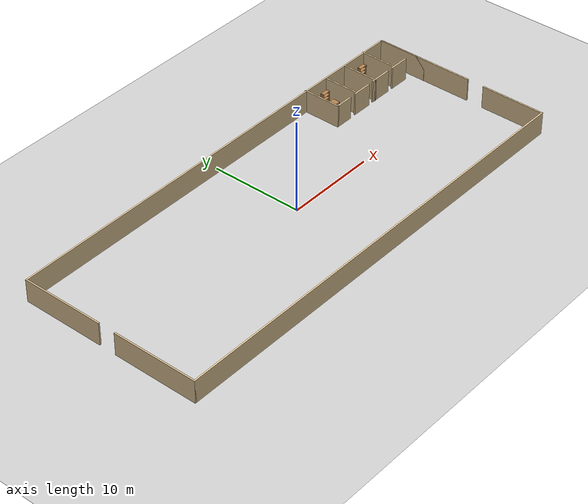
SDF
<sdf version="1.6">
 <world name="default">
  <light name="sun" type="directional">
   <pose>0 0 10 0 -0 0</pose>
   <diffuse>0.8 0.8 0.8 1</diffuse>
   <specular>0.1 0.1 0.1 1</specular>
   <attenuation>
    <range>1000</range>
    <constant>0.9</constant>
    <linear>0.01</linear>
    <quadratic>0.001</quadratic>
   </attenuation>
   <direction>-0.5 0.5 -1</direction>
  </light>
  <model name="ground_plane">
   <static>1</static>
   <link name="link">
    <collision name="collision">
     <geometry><plane><normal>0 0 1</normal><size>100 100</size></plane></geometry>
     <surface><friction><ode><mu>100</mu><mu2>50</mu2></ode></friction></surface>
    </collision>
    <visual name="visual">
     <cast_shadows>0</cast_shadows>
     <geometry><plane><normal>0 0 1</normal><size>100 100</size></plane></geometry>
     <material>
      <script><uri>file://media/materials/scripts/gazebo.material</uri><name>Gazebo/Grey</name></script>
     </material>
    </visual>
   </link>
  </model>
  <gravity>0 0 -9.8</gravity>
  <magnetic_field>6e-06 2.3e-05 -4.2e-05</magnetic_field>
  <atmosphere type="adiabatic"/>
  <physics name="default_physics" default="0" type="ode">
   <max_step_size>0.001</max_step_size>
   <real_time_factor>1</real_time_factor>
   <real_time_update_rate>1000</real_time_update_rate>
  </physics>
  <scene><ambient>0.4 0.4 0.4 1</ambient><background>0.7 0.7 0.7 1</background><shadows>1</shadows></scene>
  <spherical_coordinates>
   <surface_model>EARTH_WGS84</surface_model>
   <latitude_deg>0</latitude_deg>
   <longitude_deg>0</longitude_deg>
   <elevation>0</elevation>
   <heading_deg>0</heading_deg>
  </spherical_coordinates>
  <model name="warehouse.world">
   <pose>-0.1899 -0.31102 0 0 -0 0</pose>
   <link name="Wall_11">
    <collision name="Wall_11_Collision">
     <geometry><box><size>8.95437 0.15 2.5</size></box></geometry>
     <pose>0 0 1.25 0 -0 0</pose>
    </collision>
    <visual name="Wall_11_Visual">
     <pose>0 0 1.25 0 -0 0</pose>
     <geometry><box><size>8.95437 0.15 2.5</size></box></geometry>
     <material>
      <script><uri>file://media/materials/scripts/gazebo.material</uri><name>Gazebo/Grey</name></script>
      <ambient>0.921569 0.807843 0.615686 1</ambient>
     </material>
    </visual>
    <pose>-24.9174 5.50766 0 0 0 -1.5708</pose>
   </link>
   <link name="Wall_15">
    <collision name="Wall_15_Collision">
     <geometry><box><size>4.25 0.15 2.5</size></box></geometry>
     <pose>0 0 1.25 0 -0 0</pose>
    </collision>
    <visual name="Wall_15_Visual">
     <pose>0 0 1.25 0 -0 0</pose>
     <geometry><box><size>4.25 0.15 2.5</size></box></geometry>
     <material>
      <script><uri>file://media/materials/scripts/gazebo.material</uri><name>Gazebo/Grey</name></script>
      <ambient>0.921569 0.807843 0.615686 1</ambient>
     </material>
    </visual>
    <pose>13.0128 7.93957 0 0 0 -1.5708</pose>
   </link>
   <link name="Wall_16">
    <collision name="Wall_16_Collision">
     <geometry><box><size>2 0.15 2.5</size></box></geometry>
     <pose>0 0 1.25 0 -0 0</pose>
    </collision>
    <visual name="Wall_16_Visual">
     <pose>0 0 1.25 0 -0 0</pose>
     <geometry><box><size>2 0.15 2.5</size></box></geometry>
     <material>
      <script><uri>file://media/materials/scripts/gazebo.material</uri><name>Gazebo/Grey</name></script>
      <ambient>0.921569 0.807843 0.615686 1</ambient>
     </material>
    </visual>
    <pose>13.9378 5.88957 0 0 -0 0</pose>
   </link>
   <link name="Wall_18">
    <collision name="Wall_18_Collision">
     <geometry><box><size>4 0.15 2.5</size></box></geometry>
     <pose>0 0 1.25 0 -0 0</pose>
    </collision>
    <visual name="Wall_18_Visual">
     <pose>0 0 1.25 0 -0 0</pose>
     <geometry><box><size>4 0.15 2.5</size></box></geometry>
     <material>
      <script><uri>file://media/materials/scripts/gazebo.material</uri><name>Gazebo/Grey</name></script>
      <ambient>0.921569 0.807843 0.615686 1</ambient>
     </material>
    </visual>
    <pose>21.9895 8.0272 0 0 0 -1.5708</pose>
   </link>
   <link name="Wall_20">
    <collision name="Wall_20_Collision">
     <geometry><box><size>2.25 0.15 2.5</size></box></geometry>
     <pose>0 0 1.25 0 -0 0</pose>
    </collision>
    <visual name="Wall_20_Visual">
     <pose>0 0 1.25 0 -0 0</pose>
     <geometry><box><size>2.25 0.15 2.5</size></box></geometry>
     <material>
      <script><uri>file://media/materials/scripts/gazebo.material</uri><name>Gazebo/Grey</name></script>
      <ambient>0.921569 0.807843 0.615686 1</ambient>
     </material>
    </visual>
    <pose>22.7668 5.9506 0 0 -0 3.14159</pose>
   </link>
   <link name="Wall_22">
    <collision name="Wall_22_Collision">
     <geometry><box><size>2.5 0.15 2.5</size></box></geometry>
     <pose>0 0 1.25 0 -0 0</pose>
    </collision>
    <visual name="Wall_22_Visual">
     <pose>0 0 1.25 0 -0 0</pose>
     <geometry><box><size>2.5 0.15 2.5</size></box></geometry>
     <material>
      <script><uri>file://media/materials/scripts/gazebo.material</uri><name>Gazebo/Grey</name></script>
      <ambient>0.921569 0.807843 0.615686 1</ambient>
     </material>
    </visual>
    <pose>19.7533 5.95577 0 0 -0 3.14159</pose>
   </link>
   <link name="Wall_24">
    <collision name="Wall_24_Collision">
     <geometry><box><size>4 0.15 2.5</size></box></geometry>
     <pose>0 0 1.25 0 -0 0</pose>
    </collision>
    <visual name="Wall_24_Visual">
     <pose>0 0 1.25 0 -0 0</pose>
     <geometry><box><size>4 0.15 2.5</size></box></geometry>
     <material>
      <script><uri>file://media/materials/scripts/gazebo.material</uri><name>Gazebo/Grey</name></script>
      <ambient>0.921569 0.807843 0.615686 1</ambient>
     </material>
    </visual>
    <pose>18.9144 7.84422 0 0 -0 1.5708</pose>
   </link>
   <link name="Wall_26">
    <collision name="Wall_26_Collision">
     <geometry><box><size>3.75 0.15 2.5</size></box></geometry>
     <pose>0 0 1.25 0 -0 0</pose>
    </collision>
    <visual name="Wall_26_Visual">
     <pose>0 0 1.25 0 -0 0</pose>
     <geometry><box><size>3.75 0.15 2.5</size></box></geometry>
     <material>
      <script><uri>file://media/materials/scripts/gazebo.material</uri><name>Gazebo/Grey</name></script>
      <ambient>0.921569 0.807843 0.615686 1</ambient>
     </material>
    </visual>
    <pose>15.9835 7.91123 0 0 0 -1.5708</pose>
   </link>
   <link name="Wall_28">
    <collision name="Wall_28_Collision">
     <geometry><box><size>2.25 0.15 2.5</size></box></geometry>
     <pose>0 0 1.25 0 -0 0</pose>
    </collision>
    <visual name="Wall_28_Visual">
     <pose>0 0 1.25 0 -0 0</pose>
     <geometry><box><size>2.25 0.15 2.5</size></box></geometry>
     <material>
      <script><uri>file://media/materials/scripts/gazebo.material</uri><name>Gazebo/Grey</name></script>
      <ambient>0.921569 0.807843 0.615686 1</ambient>
     </material>
    </visual>
    <pose>16.7839 5.91781 0 0 -0 3.14159</pose>
   </link>
   <link name="Wall_30">
    <collision name="Wall_30_Collision">
     <geometry><box><size>11 0.15 2.5</size></box></geometry>
     <pose>0 0 1.25 0 -0 0</pose>
    </collision>
    <visual name="Wall_30_Visual">
     <pose>0 0 1.25 0 -0 0</pose>
     <geometry><box><size>11 0.15 2.5</size></box></geometry>
     <material>
      <script><uri>file://media/materials/scripts/gazebo.material</uri><name>Gazebo/Grey</name></script>
      <ambient>0.921569 0.807843 0.615686 1</ambient>
     </material>
    </visual>
    <pose>24.9374 4.40432 0 0 -0 1.5708</pose>
   </link>
   <link name="Wall_31">
    <collision name="Wall_31_Collision">
     <geometry><box><size>11 0.15 2.5</size></box></geometry>
     <pose>0 0 1.25 0 -0 0</pose>
    </collision>
    <visual name="Wall_31_Visual">
     <pose>0 0 1.25 0 -0 0</pose>
     <geometry><box><size>11 0.15 2.5</size></box></geometry>
     <material>
      <script><uri>file://media/materials/scripts/gazebo.material</uri><name>Gazebo/Grey</name></script>
      <ambient>0.921569 0.807843 0.615686 1</ambient>
     </material>
    </visual>
    <pose>24.9374 4.40432 0 0 0 -1.5708</pose>
   </link>
   <link name="Wall_33">
    <collision name="Wall_33_Collision">
     <geometry><box><size>7 0.15 2.5</size></box></geometry>
     <pose>0 0 1.25 0 -0 0</pose>
    </collision>
    <visual name="Wall_33_Visual">
     <pose>0 0 1.25 0 -0 0</pose>
     <geometry><box><size>7 0.15 2.5</size></box></geometry>
     <material>
      <script><uri>file://media/materials/scripts/gazebo.material</uri><name>Gazebo/Grey</name></script>
      <ambient>0.921569 0.807843 0.615686 1</ambient>
     </material>
    </visual>
    <pose>24.91 -6.46974 0 0 0 -1.5708</pose>
   </link>
   <link name="Wall_35">
    <collision name="Wall_35_Collision">
     <geometry><box><size>50 0.15 2.5</size></box></geometry>
     <pose>0 0 1.25 0 -0 0</pose>
    </collision>
    <visual name="Wall_35_Visual">
     <pose>0 0 1.25 0 -0 0</pose>
     <geometry><box><size>50 0.15 2.5</size></box></geometry>
     <material>
      <script><uri>file://media/materials/scripts/gazebo.material</uri><name>Gazebo/Grey</name></script>
      <ambient>0.921569 0.807843 0.615686 1</ambient>
     </material>
    </visual>
    <pose>-0.012409 -9.98957 0 0 -0 0</pose>
   </link>
   <link name="Wall_4">
    <collision name="Wall_4_Collision">
     <geometry><box><size>49.75 0.15 2.5</size></box></geometry>
     <pose>0 0 1.25 0 -0 0</pose>
    </collision>
    <visual name="Wall_4_Visual">
     <pose>0 0 1.25 0 -0 0</pose>
     <geometry><box><size>49.75 0.15 2.5</size></box></geometry>
     <material>
      <script><uri>file://media/materials/scripts/gazebo.material</uri><name>Gazebo/Grey</name></script>
      <ambient>0.921569 0.807843 0.615686 1</ambient>
     </material>
    </visual>
    <pose>-0.117354 9.89464 0 0 -0 3.14159</pose>
   </link>
   <link name="Wall_9">
    <collision name="Wall_9_Collision">
     <geometry><box><size>9.25 0.15 2.5</size></box></geometry>
     <pose>0 0 1.25 0 -0 0</pose>
    </collision>
    <visual name="Wall_9_Visual">
     <pose>0 0 1.25 0 -0 0</pose>
     <geometry><box><size>9.25 0.15 2.5</size></box></geometry>
     <material>
      <script><uri>file://media/materials/scripts/gazebo.material</uri><name>Gazebo/Grey</name></script>
      <ambient>0.921569 0.807843 0.615686 1</ambient>
     </material>
    </visual>
    <pose>-24.9374 -5.43957 0 0 0 -1.5708</pose>
   </link>
   <static>1</static>
  </model>
  <model name="bookshelf">
   <static>1</static>
   <link name="link">
    <inertial><mass>1</mass></inertial>
    <collision name="back">
     <pose>0 0.005 0.6 0 -0 0</pose>
     <geometry><box><size>0.9 0.01 1.2</size></box></geometry>
    </collision>
    <visual name="visual1">
     <pose>0 0.005 0.6 0 -0 0</pose>
     <geometry><box><size>0.9 0.01 1.2</size></box></geometry>
     <material>
      <script><uri>file://media/materials/scripts/gazebo.material</uri><name>Gazebo/Wood</name></script>
     </material>
    </visual>
    <collision name="left_side">
     <pose>0.45 -0.195 0.6 0 -0 0</pose>
     <geometry><box><size>0.02 0.4 1.2</size></box></geometry>
    </collision>
    <visual name="visual2">
     <pose>0.45 -0.195 0.6 0 -0 0</pose>
     <geometry><box><size>0.02 0.4 1.2</size></box></geometry>
     <material>
      <script><uri>file://media/materials/scripts/gazebo.material</uri><name>Gazebo/Wood</name></script>
     </material>
    </visual>
    <collision name="right_side">
     <pose>-0.45 -0.195 0.6 0 -0 0</pose>
     <geometry><box><size>0.02 0.4 1.2</size></box></geometry>
    </collision>
    <visual name="visual3">
     <pose>-0.45 -0.195 0.6 0 -0 0</pose>
     <geometry><box><size>0.02 0.4 1.2</size></box></geometry>
     <material>
      <script><uri>file://media/materials/scripts/gazebo.material</uri><name>Gazebo/Wood</name></script>
     </material>
    </visual>
    <collision name="bottom">
     <pose>0 -0.195 0.03 0 -0 0</pose>
     <geometry><box><size>0.88 0.4 0.06</size></box></geometry>
    </collision>
    <visual name="visual4">
     <pose>0 -0.195 0.03 0 -0 0</pose>
     <geometry><box><size>0.88 0.4 0.06</size></box></geometry>
     <material>
      <script><uri>file://media/materials/scripts/gazebo.material</uri><name>Gazebo/Wood</name></script>
     </material>
    </visual>
    <collision name="top">
     <pose>0 -0.195 1.19 0 -0 0</pose>
     <geometry><box><size>0.88 0.4 0.02</size></box></geometry>
    </collision>
    <visual name="visual5">
     <pose>0 -0.195 1.19 0 -0 0</pose>
     <geometry><box><size>0.88 0.4 0.02</size></box></geometry>
     <material>
      <script><uri>file://media/materials/scripts/gazebo.material</uri><name>Gazebo/Wood</name></script>
     </material>
    </visual>
    <collision name="low_shelf">
     <pose>0 -0.195 0.43 0 -0 0</pose>
     <geometry><box><size>0.88 0.4 0.02</size></box></geometry>
    </collision>
    <visual name="visual6">
     <pose>0 -0.195 0.43 0 -0 0</pose>
     <geometry><box><size>0.88 0.4 0.02</size></box></geometry>
     <material>
      <script><uri>file://media/materials/scripts/gazebo.material</uri><name>Gazebo/Wood</name></script>
     </material>
    </visual>
    <collision name="high_shelf">
     <pose>0 -0.195 0.8 0 -0 0</pose>
     <geometry><box><size>0.88 0.4 0.02</size></box></geometry>
    </collision>
    <visual name="visual7">
     <pose>0 -0.195 0.8 0 -0 0</pose>
     <geometry><box><size>0.88 0.4 0.02</size></box></geometry>
     <material>
      <script><uri>file://media/materials/scripts/gazebo.material</uri><name>Gazebo/Wood</name></script>
     </material>
    </visual>
   </link>
   <pose>15.2638 9.38561 0 0 -0 0</pose>
  </model>
  <model name="bookshelf_0">
   <static>1</static>
   <link name="link">
    <inertial><mass>1</mass></inertial>
    <collision name="back">
     <pose>0 0.005 0.6 0 -0 0</pose>
     <geometry><box><size>0.9 0.01 1.2</size></box></geometry>
    </collision>
    <visual name="visual1">
     <pose>0 0.005 0.6 0 -0 0</pose>
     <geometry><box><size>0.9 0.01 1.2</size></box></geometry>
     <material>
      <script><uri>file://media/materials/scripts/gazebo.material</uri><name>Gazebo/Wood</name></script>
     </material>
    </visual>
    <collision name="left_side">
     <pose>0.45 -0.195 0.6 0 -0 0</pose>
     <geometry><box><size>0.02 0.4 1.2</size></box></geometry>
    </collision>
    <visual name="visual2">
     <pose>0.45 -0.195 0.6 0 -0 0</pose>
     <geometry><box><size>0.02 0.4 1.2</size></box></geometry>
     <material>
      <script><uri>file://media/materials/scripts/gazebo.material</uri><name>Gazebo/Wood</name></script>
     </material>
    </visual>
    <collision name="right_side">
     <pose>-0.45 -0.195 0.6 0 -0 0</pose>
     <geometry><box><size>0.02 0.4 1.2</size></box></geometry>
    </collision>
    <visual name="visual3">
     <pose>-0.45 -0.195 0.6 0 -0 0</pose>
     <geometry><box><size>0.02 0.4 1.2</size></box></geometry>
     <material>
      <script><uri>file://media/materials/scripts/gazebo.material</uri><name>Gazebo/Wood</name></script>
     </material>
    </visual>
    <collision name="bottom">
     <pose>0 -0.195 0.03 0 -0 0</pose>
     <geometry><box><size>0.88 0.4 0.06</size></box></geometry>
    </collision>
    <visual name="visual4">
     <pose>0 -0.195 0.03 0 -0 0</pose>
     <geometry><box><size>0.88 0.4 0.06</size></box></geometry>
     <material>
      <script><uri>file://media/materials/scripts/gazebo.material</uri><name>Gazebo/Wood</name></script>
     </material>
    </visual>
    <collision name="top">
     <pose>0 -0.195 1.19 0 -0 0</pose>
     <geometry><box><size>0.88 0.4 0.02</size></box></geometry>
    </collision>
    <visual name="visual5">
     <pose>0 -0.195 1.19 0 -0 0</pose>
     <geometry><box><size>0.88 0.4 0.02</size></box></geometry>
     <material>
      <script><uri>file://media/materials/scripts/gazebo.material</uri><name>Gazebo/Wood</name></script>
     </material>
    </visual>
    <collision name="low_shelf">
     <pose>0 -0.195 0.43 0 -0 0</pose>
     <geometry><box><size>0.88 0.4 0.02</size></box></geometry>
    </collision>
    <visual name="visual6">
     <pose>0 -0.195 0.43 0 -0 0</pose>
     <geometry><box><size>0.88 0.4 0.02</size></box></geometry>
     <material>
      <script><uri>file://media/materials/scripts/gazebo.material</uri><name>Gazebo/Wood</name></script>
     </material>
    </visual>
    <collision name="high_shelf">
     <pose>0 -0.195 0.8 0 -0 0</pose>
     <geometry><box><size>0.88 0.4 0.02</size></box></geometry>
    </collision>
    <visual name="visual7">
     <pose>0 -0.195 0.8 0 -0 0</pose>
     <geometry><box><size>0.88 0.4 0.02</size></box></geometry>
     <material>
      <script><uri>file://media/materials/scripts/gazebo.material</uri><name>Gazebo/Wood</name></script>
     </material>
    </visual>
   </link>
   <pose>16.3534 9.29994 0 0 -0 0</pose>
  </model>
  <model name="bookshelf_1">
   <static>1</static>
   <link name="link">
    <inertial><mass>1</mass></inertial>
    <collision name="back">
     <pose>0 0.005 0.6 0 -0 0</pose>
     <geometry><box><size>0.9 0.01 1.2</size></box></geometry>
    </collision>
    <visual name="visual1">
     <pose>0 0.005 0.6 0 -0 0</pose>
     <geometry><box><size>0.9 0.01 1.2</size></box></geometry>
     <material>
      <script><uri>file://media/materials/scripts/gazebo.material</uri><name>Gazebo/Wood</name></script>
     </material>
    </visual>
    <collision name="left_side">
     <pose>0.45 -0.195 0.6 0 -0 0</pose>
     <geometry><box><size>0.02 0.4 1.2</size></box></geometry>
    </collision>
    <visual name="visual2">
     <pose>0.45 -0.195 0.6 0 -0 0</pose>
     <geometry><box><size>0.02 0.4 1.2</size></box></geometry>
     <material>
      <script><uri>file://media/materials/scripts/gazebo.material</uri><name>Gazebo/Wood</name></script>
     </material>
    </visual>
    <collision name="right_side">
     <pose>-0.45 -0.195 0.6 0 -0 0</pose>
     <geometry><box><size>0.02 0.4 1.2</size></box></geometry>
    </collision>
    <visual name="visual3">
     <pose>-0.45 -0.195 0.6 0 -0 0</pose>
     <geometry><box><size>0.02 0.4 1.2</size></box></geometry>
     <material>
      <script><uri>file://media/materials/scripts/gazebo.material</uri><name>Gazebo/Wood</name></script>
     </material>
    </visual>
    <collision name="bottom">
     <pose>0 -0.195 0.03 0 -0 0</pose>
     <geometry><box><size>0.88 0.4 0.06</size></box></geometry>
    </collision>
    <visual name="visual4">
     <pose>0 -0.195 0.03 0 -0 0</pose>
     <geometry><box><size>0.88 0.4 0.06</size></box></geometry>
     <material>
      <script><uri>file://media/materials/scripts/gazebo.material</uri><name>Gazebo/Wood</name></script>
     </material>
    </visual>
    <collision name="top">
     <pose>0 -0.195 1.19 0 -0 0</pose>
     <geometry><box><size>0.88 0.4 0.02</size></box></geometry>
    </collision>
    <visual name="visual5">
     <pose>0 -0.195 1.19 0 -0 0</pose>
     <geometry><box><size>0.88 0.4 0.02</size></box></geometry>
     <material>
      <script><uri>file://media/materials/scripts/gazebo.material</uri><name>Gazebo/Wood</name></script>
     </material>
    </visual>
    <collision name="low_shelf">
     <pose>0 -0.195 0.43 0 -0 0</pose>
     <geometry><box><size>0.88 0.4 0.02</size></box></geometry>
    </collision>
    <visual name="visual6">
     <pose>0 -0.195 0.43 0 -0 0</pose>
     <geometry><box><size>0.88 0.4 0.02</size></box></geometry>
     <material>
      <script><uri>file://media/materials/scripts/gazebo.material</uri><name>Gazebo/Wood</name></script>
     </material>
    </visual>
    <collision name="high_shelf">
     <pose>0 -0.195 0.8 0 -0 0</pose>
     <geometry><box><size>0.88 0.4 0.02</size></box></geometry>
    </collision>
    <visual name="visual7">
     <pose>0 -0.195 0.8 0 -0 0</pose>
     <geometry><box><size>0.88 0.4 0.02</size></box></geometry>
     <material>
      <script><uri>file://media/materials/scripts/gazebo.material</uri><name>Gazebo/Wood</name></script>
     </material>
    </visual>
   </link>
   <pose>21.2515 9.49726 0 0 -0 0</pose>
  </model>
  <model name="bookshelf_2">
   <static>1</static>
   <link name="link">
    <inertial><mass>1</mass></inertial>
    <collision name="back">
     <pose>0 0.005 0.6 0 -0 0</pose>
     <geometry><box><size>0.9 0.01 1.2</size></box></geometry>
    </collision>
    <visual name="visual1">
     <pose>0 0.005 0.6 0 -0 0</pose>
     <geometry><box><size>0.9 0.01 1.2</size></box></geometry>
     <material>
      <script><uri>file://media/materials/scripts/gazebo.material</uri><name>Gazebo/Wood</name></script>
     </material>
    </visual>
    <collision name="left_side">
     <pose>0.45 -0.195 0.6 0 -0 0</pose>
     <geometry><box><size>0.02 0.4 1.2</size></box></geometry>
    </collision>
    <visual name="visual2">
     <pose>0.45 -0.195 0.6 0 -0 0</pose>
     <geometry><box><size>0.02 0.4 1.2</size></box></geometry>
     <material>
      <script><uri>file://media/materials/scripts/gazebo.material</uri><name>Gazebo/Wood</name></script>
     </material>
    </visual>
    <collision name="right_side">
     <pose>-0.45 -0.195 0.6 0 -0 0</pose>
     <geometry><box><size>0.02 0.4 1.2</size></box></geometry>
    </collision>
    <visual name="visual3">
     <pose>-0.45 -0.195 0.6 0 -0 0</pose>
     <geometry><box><size>0.02 0.4 1.2</size></box></geometry>
     <material>
      <script><uri>file://media/materials/scripts/gazebo.material</uri><name>Gazebo/Wood</name></script>
     </material>
    </visual>
    <collision name="bottom">
     <pose>0 -0.195 0.03 0 -0 0</pose>
     <geometry><box><size>0.88 0.4 0.06</size></box></geometry>
    </collision>
    <visual name="visual4">
     <pose>0 -0.195 0.03 0 -0 0</pose>
     <geometry><box><size>0.88 0.4 0.06</size></box></geometry>
     <material>
      <script><uri>file://media/materials/scripts/gazebo.material</uri><name>Gazebo/Wood</name></script>
     </material>
    </visual>
    <collision name="top">
     <pose>0 -0.195 1.19 0 -0 0</pose>
     <geometry><box><size>0.88 0.4 0.02</size></box></geometry>
    </collision>
    <visual name="visual5">
     <pose>0 -0.195 1.19 0 -0 0</pose>
     <geometry><box><size>0.88 0.4 0.02</size></box></geometry>
     <material>
      <script><uri>file://media/materials/scripts/gazebo.material</uri><name>Gazebo/Wood</name></script>
     </material>
    </visual>
    <collision name="low_shelf">
     <pose>0 -0.195 0.43 0 -0 0</pose>
     <geometry><box><size>0.88 0.4 0.02</size></box></geometry>
    </collision>
    <visual name="visual6">
     <pose>0 -0.195 0.43 0 -0 0</pose>
     <geometry><box><size>0.88 0.4 0.02</size></box></geometry>
     <material>
      <script><uri>file://media/materials/scripts/gazebo.material</uri><name>Gazebo/Wood</name></script>
     </material>
    </visual>
    <collision name="high_shelf">
     <pose>0 -0.195 0.8 0 -0 0</pose>
     <geometry><box><size>0.88 0.4 0.02</size></box></geometry>
    </collision>
    <visual name="visual7">
     <pose>0 -0.195 0.8 0 -0 0</pose>
     <geometry><box><size>0.88 0.4 0.02</size></box></geometry>
     <material>
      <script><uri>file://media/materials/scripts/gazebo.material</uri><name>Gazebo/Wood</name></script>
     </material>
    </visual>
   </link>
   <pose>22.4079 9.44982 0 0 -0 0</pose>
  </model>
  <model name="table">
   <static>0</static>
   <link name="link">
    <collision name="surface">
     <pose>0 0 1 0 -0 0</pose>
     <geometry><box><size>1.5 0.8 0.03</size></box></geometry>
     <surface><friction><ode><mu>0.6</mu><mu2>0.6</mu2></ode></friction></surface>
    </collision>
    <visual name="visual1">
     <pose>0 0 1 0 -0 0</pose>
     <geometry><box><size>1.4 0.8 0.04</size></box></geometry>
     <material>
      <script><uri>file://media/materials/scripts/gazebo.material</uri><name>Gazebo/Wood</name></script>
     </material>
    </visual>
    <collision name="front_left_leg">
     <pose>0.68 0.38 0.5 0 -0 0</pose>
     <geometry><cylinder><radius>0.02</radius><length>1</length></cylinder></geometry>
    </collision>
    <visual name="front_left_leg">
     <pose>0.68 0.38 0.5 0 -0 0</pose>
     <geometry><cylinder><radius>0.02</radius><length>1</length></cylinder></geometry>
     <material>
      <script><uri>file://media/materials/scripts/gazebo.material</uri><name>Gazebo/Grey</name></script>
     </material>
    </visual>
    <collision name="front_right_leg">
     <pose>0.68 -0.38 0.5 0 -0 0</pose>
     <geometry><cylinder><radius>0.02</radius><length>1</length></cylinder></geometry>
    </collision>
    <visual name="front_right_leg">
     <pose>0.68 -0.38 0.5 0 -0 0</pose>
     <geometry><cylinder><radius>0.02</radius><length>1</length></cylinder></geometry>
     <material>
      <script><uri>file://media/materials/scripts/gazebo.material</uri><name>Gazebo/Grey</name></script>
     </material>
    </visual>
    <collision name="back_right_leg">
     <pose>-0.68 -0.38 0.5 0 -0 0</pose>
     <geometry><cylinder><radius>0.02</radius><length>1</length></cylinder></geometry>
    </collision>
    <visual name="back_right_leg">
     <pose>-0.68 -0.38 0.5 0 -0 0</pose>
     <geometry><cylinder><radius>0.02</radius><length>1</length></cylinder></geometry>
     <material>
      <script><uri>file://media/materials/scripts/gazebo.material</uri><name>Gazebo/Grey</name></script>
     </material>
    </visual>
    <collision name="back_left_leg">
     <pose>-0.68 0.38 0.5 0 -0 0</pose>
     <geometry><cylinder><radius>0.02</radius><length>1</length></cylinder></geometry>
    </collision>
    <visual name="back_left_leg">
     <pose>-0.68 0.38 0.5 0 -0 0</pose>
     <geometry><cylinder><radius>0.02</radius><length>1</length></cylinder></geometry>
     <material>
      <script><uri>file://media/materials/scripts/gazebo.material</uri><name>Gazebo/Grey</name></script>
     </material>
    </visual>
    <inertial>
     <inertia><ixx>1</ixx><ixy>0</ixy><ixz>0</ixz><iyy>1</iyy><iyz>0</iyz><izz>1</izz></inertia>
     <mass>1</mass>
    </inertial>
   </link>
   <pose>14.4159 7.60818 -9e-06 1e-06 -1e-06 0</pose>
  </model>
 </world>
</sdf>
